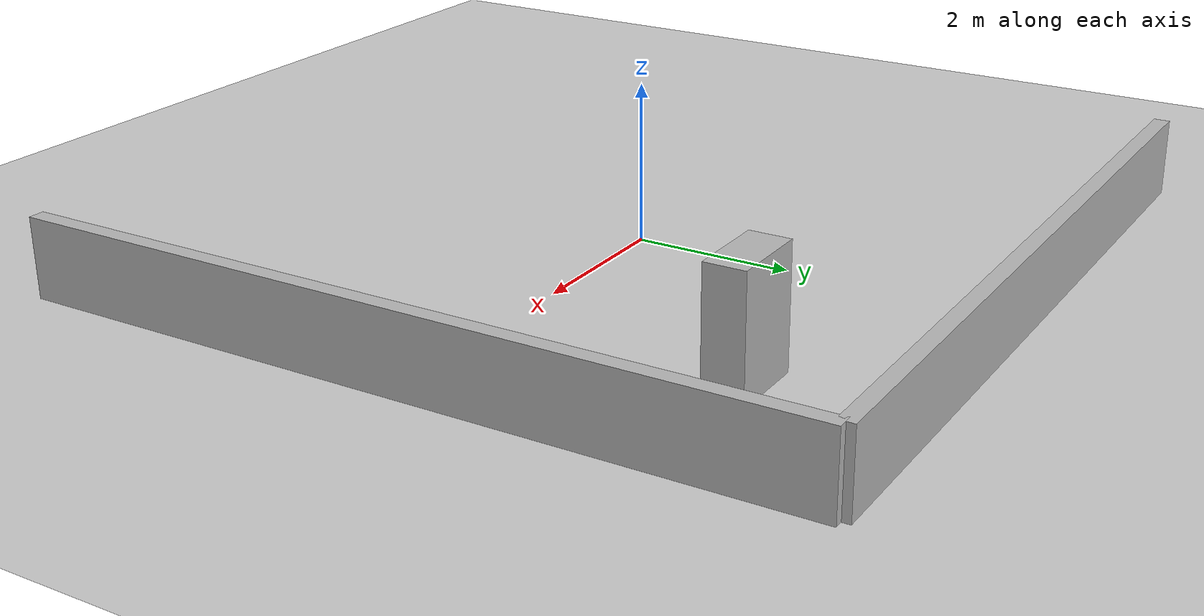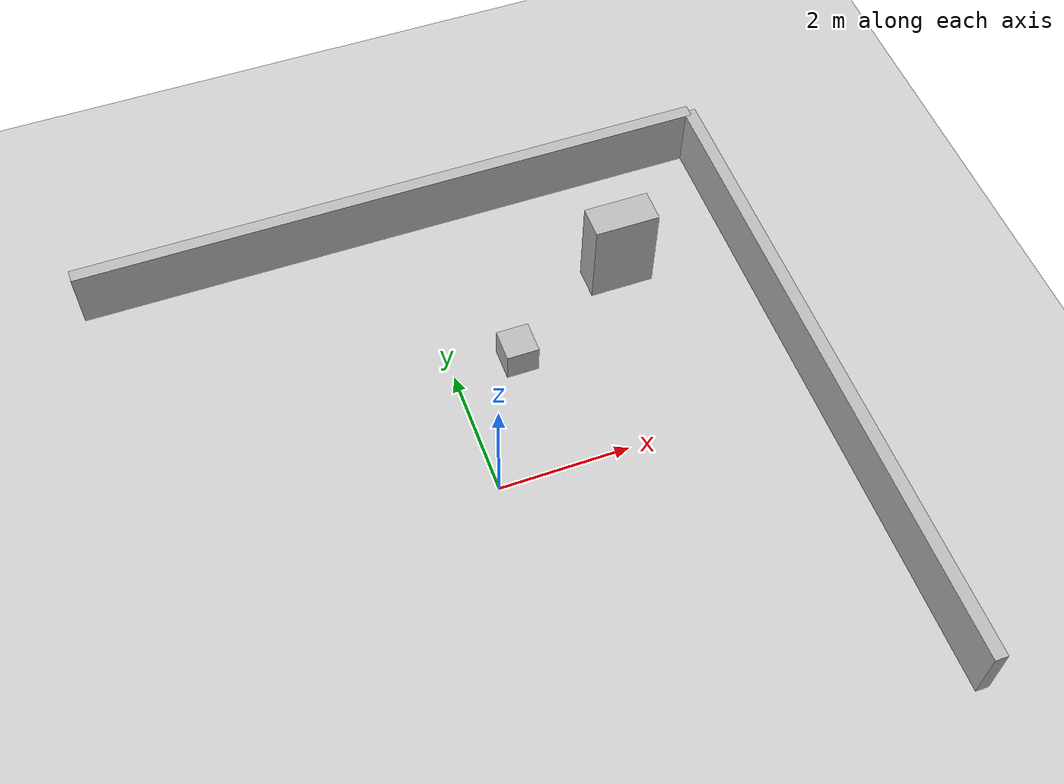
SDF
<?xml version="1.0" ?>
<sdf version="1.6">
  <world name="industrial_world">

    <!-- Gravedad e iluminación -->
    <gravity>0 0 -9.8</gravity>
    <include>
      <uri>model://sun</uri>
    </include>

    <!-- Suelo -->
    <include>
      <uri>model://ground_plane</uri>
    </include>

    <!-- Paredes -->
    <model name="wall_1">
      <pose>0 5 0.5 0 0 0</pose>
      <link name="link">
        <collision name="collision">
          <geometry>
            <box><size>10 0.2 1</size></box>
          </geometry>
        </collision>
        <visual name="visual">
          <geometry>
            <box><size>10 0.2 1</size></box>
          </geometry>
        </visual>
      </link>
    </model>

    <model name="wall_2">
      <pose>5 0 0.5 0 0 1.57</pose>
      <link name="link">
        <collision name="collision">
          <geometry>
            <box><size>10 0.2 1</size></box>
          </geometry>
        </collision>
        <visual name="visual">
          <geometry>
            <box><size>10 0.2 1</size></box>
          </geometry>
        </visual>
      </link>
    </model>

    <!-- Estanterías simuladas como cajas -->
    <model name="rack_1">
      <pose>3 3 0.75 0 0 0</pose>
      <link name="link">
        <collision name="collision">
          <geometry>
            <box><size>1 0.5 1.5</size></box>
          </geometry>
        </collision>
        <visual name="visual">
          <geometry>
            <box><size>1 0.5 1.5</size></box>
          </geometry>
        </visual>
      </link>
    </model>

    <!-- Caja -->
    <model name="box_1">
      <pose>1 2 0.25 0 0 0</pose>
      <link name="link">
        <collision name="collision">
          <geometry>
            <box><size>0.5 0.5 0.5</size></box>
          </geometry>
        </collision>
        <visual name="visual">
          <geometry>
            <box><size>0.5 0.5 0.5</size></box>
          </geometry>
        </visual>
      </link>
    </model>

    <!-- Luz adicional -->
    <light name="CeilingLight" type="point">
      <pose>0 0 5 0 0 0</pose>
      <diffuse>0.6 0.6 0.6 1</diffuse>
      <attenuation>
        <range>20</range>
        <linear>0.01</linear>
        <quadratic>0.001</quadratic>
      </attenuation>
    </light>

  </world>
</sdf>
